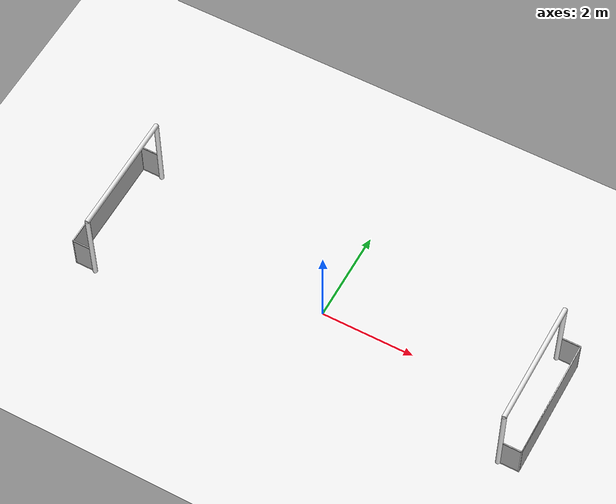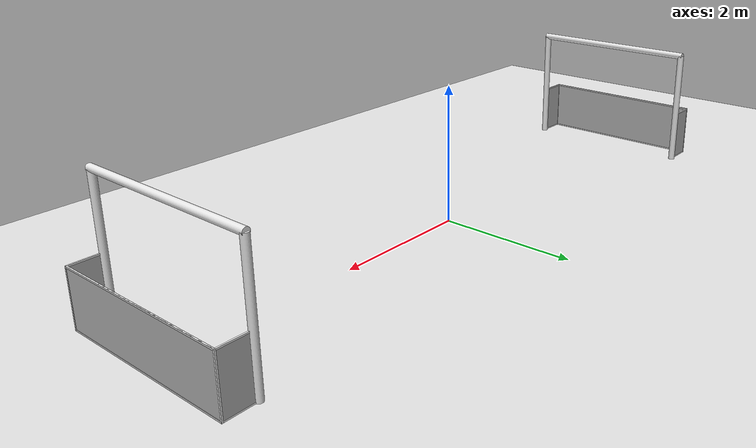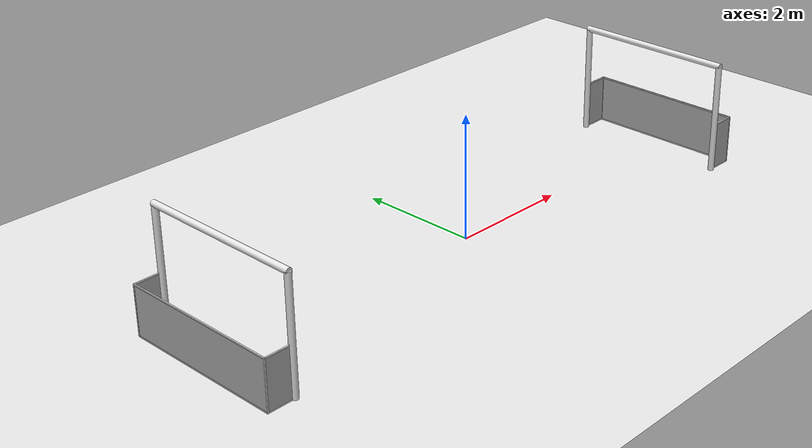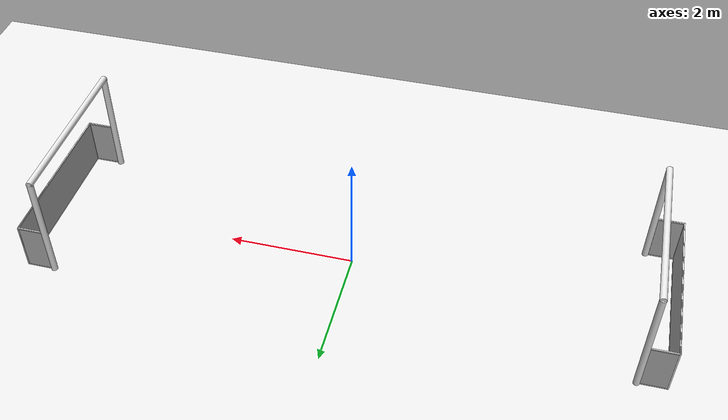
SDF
<sdf version="1.6">
 <world name="default">
  <light name="sun" type="directional">
   <pose>0 0 10 0 -0 0</pose>
   <diffuse>0.8 0.8 0.8 1</diffuse>
   <specular>0.2 0.2 0.2 1</specular>
   <attenuation>
    <range>1000</range>
    <constant>0.9</constant>
    <linear>0.01</linear>
    <quadratic>0.001</quadratic>
   </attenuation>
   <direction>-0.5 0.1 -0.9</direction>
  </light>
  <model name="ground_plane">
   <static>false</static>
   <link name="link">
    <collision name="collision">
     <geometry><plane><normal>0 0 1</normal><size>100 100</size></plane></geometry>
     <surface><friction><ode><mu>100</mu><mu2>50</mu2></ode></friction></surface>
    </collision>
    <inertial>
     <mass>0.01</mass>
     <inertia>
      <ixx>0.0000001</ixx>
      <ixy>0.0000001</ixy>
      <ixz>0.0000001</ixz>
      <iyy>0.0000001</iyy>
      <iyz>0.0000001</iyz>
      <izz>0.0000001</izz>
     </inertia>
    </inertial>
    <visual name="visual">
     <cast_shadows>0</cast_shadows>
     <geometry><plane><normal>0 0 1</normal><size>100 100</size></plane></geometry>
     <material>
      <script><uri>file://media/materials/scripts/gazebo.material</uri><name>Gazebo/White</name></script>
     </material>
    </visual>
    <kinematic>1</kinematic>
   </link>
  </model>
  <gravity>0 0 -9.8</gravity>
  <physics name="default_physics" default="0" type="ode">
   <max_step_size>0.001</max_step_size>
   <real_time_factor>1</real_time_factor>
   <real_time_update_rate>1000</real_time_update_rate>
  </physics>
  <scene>
   <ambient>0.4 0.4 0.4 1</ambient>
   <background>0.1 0.1 0.1 1</background>
   <shadows>1</shadows>
   <sky><clouds><speed>12</speed></clouds></sky>
  </scene>
  <include><name>Goal 1</name><uri>model://RoboCup 2014 SPL Goal</uri><pose>4.5 0 0 0 0 0</pose></include>
  <include><name>Goal 2</name><uri>model://RoboCup 2014 SPL Goal</uri><pose>-4.5 0 0 0 0 3.14</pose></include>
 </world>
</sdf>

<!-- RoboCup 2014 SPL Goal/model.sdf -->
<sdf version='1.6'>
    <model name='RoboCup 2014 SPL Goal'>
        <static>false</static>
        <link name='left_post'>
            <pose frame=''>0 1.3 0.9 0 -0 0</pose>
            <collision name='collision'>
                <geometry>
                    <cylinder>
                        <radius>0.05</radius>
                        <length>1.8</length>
                    </cylinder>
                </geometry>
                <max_contacts>10</max_contacts>
                <surface>
                    <contact>
                        <ode/>
                    </contact>
                    <bounce/>
                    <friction>
                        <torsional>
                            <ode/>
                        </torsional>
                        <ode/>
                    </friction>
                </surface>
            </collision>
            <inertial>
                <mass>0.01</mass>
                <inertia>
                    <ixx>0.0000001</ixx>
                    <ixy>0.0000001</ixy>
                    <ixz>0.0000001</ixz>
                    <iyy>0.0000001</iyy>
                    <iyz>0.0000001</iyz>
                    <izz>0.0000001</izz>
                </inertia>
            </inertial>
            <visual name='visual'>
                <geometry>
                    <cylinder>
                        <radius>0.05</radius>
                        <length>1.8</length>
                    </cylinder>
                </geometry>
                <material>
                    <script>
                        <uri>file://media/materials/scripts/gazebo.material</uri>
                        <name>Gazebo/White</name>
                    </script>
                </material>
            </visual>
            <self_collide>0</self_collide>
            <kinematic>1</kinematic>
        </link>
        <link name='right_post'>
            <pose frame=''>0 -1.3 0.9 0 -0 0</pose>
            <inertial>
                <mass>0.01</mass>
                <inertia>
                    <ixx>0.0000001</ixx>
                    <ixy>0.0000001</ixy>
                    <ixz>0.0000001</ixz>
                    <iyy>0.0000001</iyy>
                    <iyz>0.0000001</iyz>
                    <izz>0.0000001</izz>
                </inertia>
            </inertial>
            <collision name='collision'>
                <geometry>
                    <cylinder>
                        <radius>0.05</radius>
                        <length>1.8</length>
                    </cylinder>
                </geometry>
                <max_contacts>10</max_contacts>
                <surface>
                    <contact>
                        <ode/>
                    </contact>
                    <bounce/>
                    <friction>
                        <torsional>
                            <ode/>
                        </torsional>
                        <ode/>
                    </friction>
                </surface>
            </collision>
            <visual name='visual'>
                <geometry>
                    <cylinder>
                        <radius>0.05</radius>
                        <length>1.8</length>
                    </cylinder>
                </geometry>
                <material>
                    <script>
                        <uri>file://media/materials/scripts/gazebo.material</uri>
                        <name>Gazebo/White</name>
                    </script>
                </material>
            </visual>
            <self_collide>0</self_collide>
            <kinematic>1</kinematic>
        </link>
        <link name='left_support_horiz_lower'>
            <pose frame=''>0.24 1.3 0.01 0 -0 0</pose>
            <inertial>
                <mass>0.01</mass>
                <inertia>
                    <ixx>0.0000001</ixx>
                    <ixy>0.0000001</ixy>
                    <ixz>0.0000001</ixz>
                    <iyy>0.0000001</iyy>
                    <iyz>0.0000001</iyz>
                    <izz>0.0000001</izz>
                </inertia>
            </inertial>
            <collision name='collision'>
                <geometry>
                    <box>
                        <size>0.38 0.02 0.02</size>
                    </box>
                </geometry>
                <max_contacts>10</max_contacts>
                <surface>
                    <contact>
                        <ode/>
                    </contact>
                    <bounce/>
                    <friction>
                        <torsional>
                            <ode/>
                        </torsional>
                        <ode/>
                    </friction>
                </surface>
            </collision>
            <visual name='visual'>
                <geometry>
                    <box>
                        <size>0.38 0.02 0.02</size>
                    </box>
                </geometry>
                <material>
                    <script>
                        <uri>file://media/materials/scripts/gazebo.material</uri>
                        <name>Gazebo/White</name>
                    </script>
                </material>
            </visual>
            <self_collide>0</self_collide>
            <kinematic>1</kinematic>
        </link>
        <link name='left_support_horiz_upper'>
            <pose frame=''>0.24 1.3 0.79 0 -0 0</pose>
            <inertial>
                <mass>0.01</mass>
                <inertia>
                    <ixx>0.0000001</ixx>
                    <ixy>0.0000001</ixy>
                    <ixz>0.0000001</ixz>
                    <iyy>0.0000001</iyy>
                    <iyz>0.0000001</iyz>
                    <izz>0.0000001</izz>
                </inertia>
            </inertial>
            <collision name='collision'>
                <geometry>
                    <box>
                        <size>0.38 0.02 0.02</size>
                    </box>
                </geometry>
                <max_contacts>10</max_contacts>
                <surface>
                    <contact>
                        <ode/>
                    </contact>
                    <bounce/>
                    <friction>
                        <torsional>
                            <ode/>
                        </torsional>
                        <ode/>
                    </friction>
                </surface>
            </collision>
            <visual name='visual'>
                <geometry>
                    <box>
                        <size>0.38 0.02 0.02</size>
                    </box>
                </geometry>
                <material>
                    <script>
                        <uri>file://media/materials/scripts/gazebo.material</uri>
                        <name>Gazebo/White</name>
                    </script>
                </material>
            </visual>
            <self_collide>0</self_collide>
            <kinematic>1</kinematic>
        </link>
        <link name='left_support_vertical'>
            <pose frame=''>0.44 1.3 0.4 3.14159 1.57079 3.14159</pose>
            <inertial>
                <mass>0.01</mass>
                <inertia>
                    <ixx>0.0000001</ixx>
                    <ixy>0.0000001</ixy>
                    <ixz>0.0000001</ixz>
                    <iyy>0.0000001</iyy>
                    <iyz>0.0000001</iyz>
                    <izz>0.0000001</izz>
                </inertia>
            </inertial>
            <collision name='collision'>
                <geometry>
                    <box>
                        <size>0.8 0.02 0.02</size>
                    </box>
                </geometry>
                <max_contacts>10</max_contacts>
                <surface>
                    <contact>
                        <ode/>
                    </contact>
                    <bounce/>
                    <friction>
                        <torsional>
                            <ode/>
                        </torsional>
                        <ode/>
                    </friction>
                </surface>
            </collision>
            <visual name='visual'>
                <geometry>
                    <box>
                        <size>0.8 0.02 0.02</size>
                    </box>
                </geometry>
                <material>
                    <script>
                        <uri>file://media/materials/scripts/gazebo.material</uri>
                        <name>Gazebo/White</name>
                    </script>
                </material>
            </visual>
            <self_collide>0</self_collide>
            <kinematic>1</kinematic>
        </link>
        <link name='right_support_horiz_lower'>
            <pose frame=''>0.24 -1.3 0.01 0 -0 0</pose>
            <inertial>
                <mass>0.01</mass>
                <inertia>
                    <ixx>0.0000001</ixx>
                    <ixy>0.0000001</ixy>
                    <ixz>0.0000001</ixz>
                    <iyy>0.0000001</iyy>
                    <iyz>0.0000001</iyz>
                    <izz>0.0000001</izz>
                </inertia>
            </inertial>
            <collision name='collision'>
                <geometry>
                    <box>
                        <size>0.38 0.02 0.02</size>
                    </box>
                </geometry>
                <max_contacts>10</max_contacts>
                <surface>
                    <contact>
                        <ode/>
                    </contact>
                    <bounce/>
                    <friction>
                        <torsional>
                            <ode/>
                        </torsional>
                        <ode/>
                    </friction>
                </surface>
            </collision>
            <visual name='visual'>
                <geometry>
                    <box>
                        <size>0.38 0.02 0.02</size>
                    </box>
                </geometry>
                <material>
                    <script>
                        <uri>file://media/materials/scripts/gazebo.material</uri>
                        <name>Gazebo/White</name>
                    </script>
                </material>
            </visual>
            <self_collide>0</self_collide>
            <kinematic>1</kinematic>
        </link>
        <link name='right_support_horiz_upper'>
            <pose frame=''>0.24 -1.3 0.79 0 -0 0</pose>
            <inertial>
                <mass>0.01</mass>
                <inertia>
                    <ixx>0.0000001</ixx>
                    <ixy>0.0000001</ixy>
                    <ixz>0.0000001</ixz>
                    <iyy>0.0000001</iyy>
                    <iyz>0.0000001</iyz>
                    <izz>0.0000001</izz>
                </inertia>
            </inertial>
            <collision name='collision'>
                <geometry>
                    <box>
                        <size>0.38 0.02 0.02</size>
                    </box>
                </geometry>
                <max_contacts>10</max_contacts>
                <surface>
                    <contact>
                        <ode/>
                    </contact>
                    <bounce/>
                    <friction>
                        <torsional>
                            <ode/>
                        </torsional>
                        <ode/>
                    </friction>
                </surface>
            </collision>
            <visual name='visual'>
                <geometry>
                    <box>
                        <size>0.38 0.02 0.02</size>
                    </box>
                </geometry>
                <material>
                    <script>
                        <uri>file://media/materials/scripts/gazebo.material</uri>
                        <name>Gazebo/White</name>
                    </script>
                </material>
            </visual>
            <self_collide>0</self_collide>
            <kinematic>1</kinematic>
        </link>
        <link name='right_support_vertical'>
            <pose frame=''>0.44 -1.3 0.4 3.14159 1.57079 3.14159</pose>
            <inertial>
                <mass>0.01</mass>
                <inertia>
                    <ixx>0.0000001</ixx>
                    <ixy>0.0000001</ixy>
                    <ixz>0.0000001</ixz>
                    <iyy>0.0000001</iyy>
                    <iyz>0.0000001</iyz>
                    <izz>0.0000001</izz>
                </inertia>
            </inertial>
            <collision name='collision'>
                <geometry>
                    <box>
                        <size>0.8 0.02 0.02</size>
                    </box>
                </geometry>
                <max_contacts>10</max_contacts>
                <surface>
                    <contact>
                        <ode/>
                    </contact>
                    <bounce/>
                    <friction>
                        <torsional>
                            <ode/>
                        </torsional>
                        <ode/>
                    </friction>
                </surface>
            </collision>
            <visual name='visual'>
                <geometry>
                    <box>
                        <size>0.8 0.02 0.02</size>
                    </box>
                </geometry>
                <material>
                    <script>
                        <uri>file://media/materials/scripts/gazebo.material</uri>
                        <name>Gazebo/White</name>
                    </script>
                </material>
            </visual>
            <self_collide>0</self_collide>
            <kinematic>1</kinematic>
        </link>
        <link name='center_support_horiz_lower'>
            <pose frame=''>0.44 0 0.01 3.14159 1.57079 3.14159</pose>
            <inertial>
                <mass>0.01</mass>
                <inertia>
                    <ixx>0.0000001</ixx>
                    <ixy>0.0000001</ixy>
                    <ixz>0.0000001</ixz>
                    <iyy>0.0000001</iyy>
                    <iyz>0.0000001</iyz>
                    <izz>0.0000001</izz>
                </inertia>
            </inertial>
            <collision name='collision'>
                <geometry>
                    <box>
                        <size>0.02 2.6 0.02</size>
                    </box>
                </geometry>
                <max_contacts>10</max_contacts>
                <surface>
                    <contact>
                        <ode/>
                    </contact>
                    <bounce/>
                    <friction>
                        <torsional>
                            <ode/>
                        </torsional>
                        <ode/>
                    </friction>
                </surface>
            </collision>
            <visual name='visual'>
                <geometry>
                    <box>
                        <size>0.02 2.6 0.02</size>
                    </box>
                </geometry>
                <material>
                    <script>
                        <uri>file://media/materials/scripts/gazebo.material</uri>
                        <name>Gazebo/White</name>
                    </script>
                </material>
            </visual>
            <self_collide>0</self_collide>
            <kinematic>1</kinematic>
        </link>
        <link name='center_support_horiz_upper'>
            <pose frame=''>0.44 0 0.79 3.14159 1.57079 3.14159</pose>
            <inertial>
                <mass>0.01</mass>
                <inertia>
                    <ixx>0.0000001</ixx>
                    <ixy>0.0000001</ixy>
                    <ixz>0.0000001</ixz>
                    <iyy>0.0000001</iyy>
                    <iyz>0.0000001</iyz>
                    <izz>0.0000001</izz>
                </inertia>
            </inertial>
            <collision name='collision'>
                <geometry>
                    <box>
                        <size>0.02 2.6 0.02</size>
                    </box>
                </geometry>
                <max_contacts>10</max_contacts>
                <surface>
                    <contact>
                        <ode/>
                    </contact>
                    <bounce/>
                    <friction>
                        <torsional>
                            <ode/>
                        </torsional>
                        <ode/>
                    </friction>
                </surface>
            </collision>
            <visual name='visual'>
                <geometry>
                    <box>
                        <size>0.02 2.6 0.02</size>
                    </box>
                </geometry>
                <material>
                    <script>
                        <uri>file://media/materials/scripts/gazebo.material</uri>
                        <name>Gazebo/White</name>
                    </script>
                </material>
            </visual>
            <self_collide>0</self_collide>
            <kinematic>1</kinematic>
        </link>
        <link name='crossbar'>
            <pose frame=''>0 0 1.8 1.57 1.57 0</pose>
            <inertial>
                <mass>0.01</mass>
                <inertia>
                    <ixx>0.0000001</ixx>
                    <ixy>0.0000001</ixy>
                    <ixz>0.0000001</ixz>
                    <iyy>0.0000001</iyy>
                    <iyz>0.0000001</iyz>
                    <izz>0.0000001</izz>
                </inertia>
            </inertial>
            <collision name='collision'>
                <geometry>
                    <cylinder>
                        <radius>0.05</radius>
                        <length>2.65</length>
                    </cylinder>
                </geometry>
                <max_contacts>10</max_contacts>
                <surface>
                    <contact>
                        <ode/>
                    </contact>
                    <bounce/>
                    <friction>
                        <torsional>
                            <ode/>
                        </torsional>
                        <ode/>
                    </friction>
                </surface>
            </collision>
            <visual name='visual'>
                <geometry>
                    <cylinder>
                        <radius>0.05</radius>
                        <length>2.65</length>
                    </cylinder>
                </geometry>
                <material>
                    <script>
                        <uri>file://media/materials/scripts/gazebo.material</uri>
                        <name>Gazebo/White</name>
                    </script>
                </material>
            </visual>
            <self_collide>0</self_collide>
            <kinematic>1</kinematic>
        </link>
        <link name='center_net'>
            <pose frame=''>0.44 0 0.4 0 -0 0</pose>
            <inertial>
                <mass>0.01</mass>
                <inertia>
                    <ixx>0.0000001</ixx>
                    <ixy>0.0000001</ixy>
                    <ixz>0.0000001</ixz>
                    <iyy>0.0000001</iyy>
                    <iyz>0.0000001</iyz>
                    <izz>0.0000001</izz>
                </inertia>
            </inertial>
            <collision name='collision'>
                <geometry>
                    <box>
                        <size>0.01 2.6 0.8</size>
                    </box>
                </geometry>
                <max_contacts>10</max_contacts>
                <surface>
                    <contact>
                        <ode/>
                    </contact>
                    <bounce/>
                    <friction>
                        <torsional>
                            <ode/>
                        </torsional>
                        <ode/>
                    </friction>
                </surface>
            </collision>
            <visual name='visual'>
                <geometry>
                    <box>
                        <size>0.01 2.6 0.8</size>
                    </box>
                </geometry>
                <material>
                    <script>
                        <uri>model://robocup09_spl_field/materials/scripts/</uri>
                        <uri>model://robocup09_spl_field/materials/textures/</uri>
                        <name>RoboCup/Net</name>
                    </script>
                </material>
            </visual>
            <self_collide>0</self_collide>
            <kinematic>1</kinematic>
        </link>
        <link name='left_net'>
            <pose frame=''>0.24 1.3 0.4 0 -0 0</pose>
            <inertial>
                <mass>0.01</mass>
                <inertia>
                    <ixx>0.0000001</ixx>
                    <ixy>0.0000001</ixy>
                    <ixz>0.0000001</ixz>
                    <iyy>0.0000001</iyy>
                    <iyz>0.0000001</iyz>
                    <izz>0.0000001</izz>
                </inertia>
            </inertial>
            <collision name='collision'>
                <geometry>
                    <box>
                        <size>0.38 0.01 0.76</size>
                    </box>
                </geometry>
                <max_contacts>10</max_contacts>
                <surface>
                    <contact>
                        <ode/>
                    </contact>
                    <bounce/>
                    <friction>
                        <torsional>
                            <ode/>
                        </torsional>
                        <ode/>
                    </friction>
                </surface>
            </collision>
            <visual name='visual'>
                <geometry>
                    <box>
                        <size>0.38 0.01 0.76</size>
                    </box>
                </geometry>
                <material>
                    <script>
                        <uri>model://robocup09_spl_field/materials/scripts/</uri>
                        <uri>model://robocup09_spl_field/materials/textures/</uri>
                        <name>RoboCup/Net</name>
                    </script>
                </material>
            </visual>
            <self_collide>0</self_collide>
            <kinematic>1</kinematic>
        </link>
        <link name='right_net'>
            <pose frame=''>0.24 -1.3 0.4 0 -0 0</pose>
            <inertial>
                <mass>0.01</mass>
                <inertia>
                    <ixx>0.0000001</ixx>
                    <ixy>0.0000001</ixy>
                    <ixz>0.0000001</ixz>
                    <iyy>0.0000001</iyy>
                    <iyz>0.0000001</iyz>
                    <izz>0.0000001</izz>
                </inertia>
            </inertial>
            <collision name='collision'>
                <geometry>
                    <box>
                        <size>0.38 0.01 0.76</size>
                    </box>
                </geometry>
                <max_contacts>10</max_contacts>
                <surface>
                    <contact>
                        <ode/>
                    </contact>
                    <bounce/>
                    <friction>
                        <torsional>
                            <ode/>
                        </torsional>
                        <ode/>
                    </friction>
                </surface>
            </collision>
            <visual name='visual'>
                <geometry>
                    <box>
                        <size>0.38 0.01 0.76</size>
                    </box>
                </geometry>
                <material>
                    <script>
                        <uri>model://robocup09_spl_field/materials/scripts/</uri>
                        <uri>model://robocup09_spl_field/materials/textures/</uri>
                        <name>RoboCup/Net</name>
                    </script>
                </material>
            </visual>
            <self_collide>0</self_collide>
            <kinematic>1</kinematic>
        </link>
        <pose frame=''>4.38819 -0.032635 0 0 -0 0</pose>
    </model>
</sdf>
